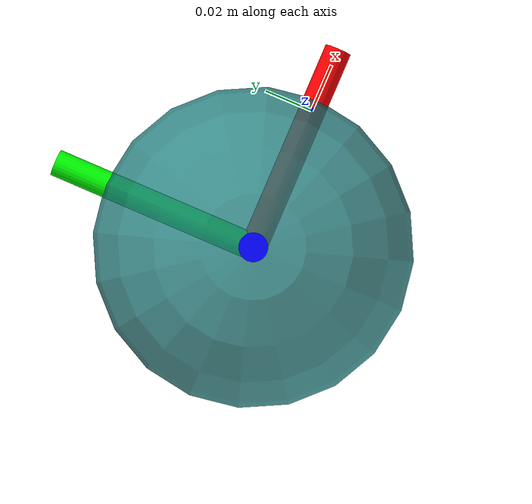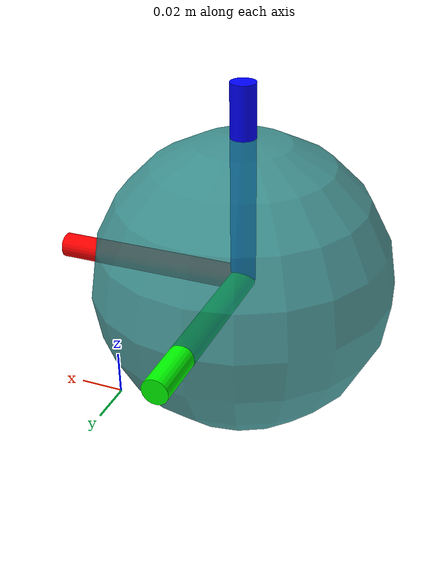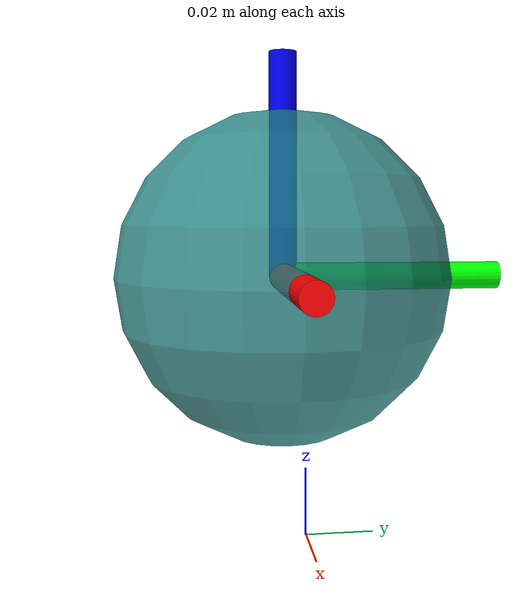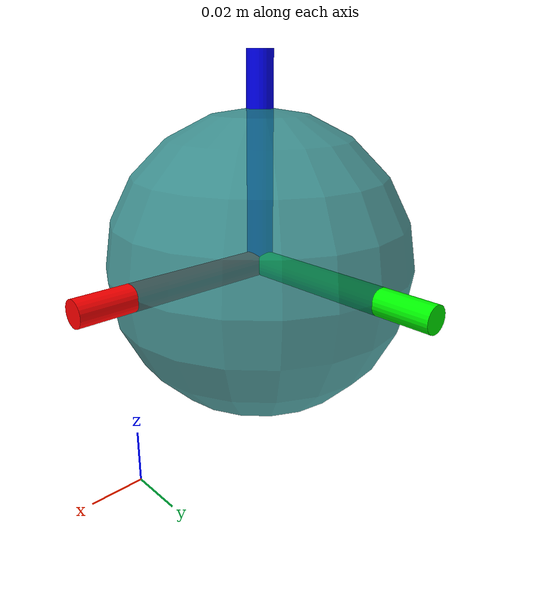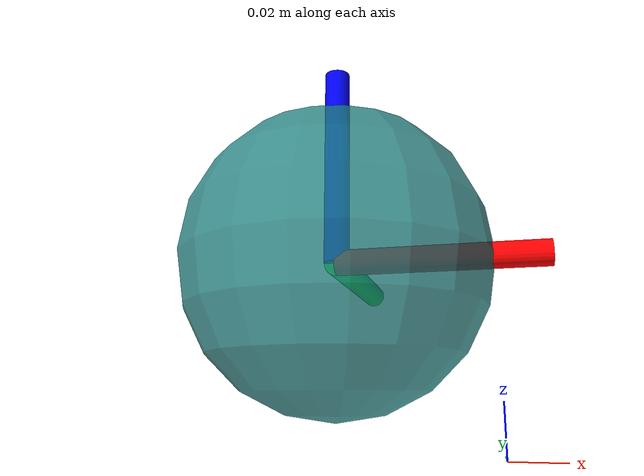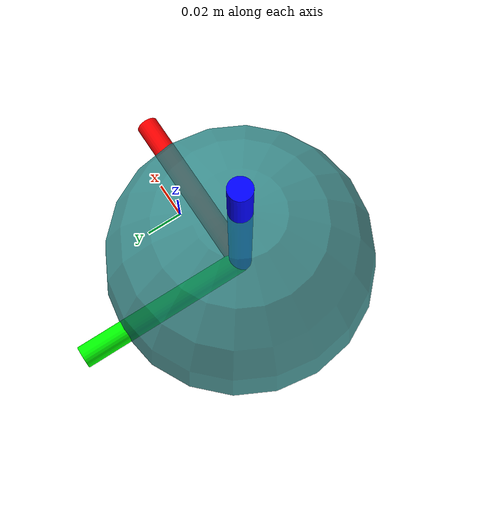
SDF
<?xml version="1.0"?>

<sdf version="1.7">
  <model name="sphere_r0.06m">

    <joint name="world_sphere_offset" type="fixed">
      <child>sphere_root</child>
      <parent>world</parent>
      <axis>
        <limit>
          <effort>0</effort>
        </limit>
      </axis>
    </joint>

    <link name="sphere_root">
      <pose relative_to="__model__">-0.06 0.0 0.072 0 0 0</pose>
    </link>

    <joint name="sphere_root_joint" type="ball">
        <child>sphere_link</child>
        <parent>sphere_root</parent>
        <axis>
          <limit>
            <effort>0</effort>
          </limit>
        </axis>
    </joint>

    <link name="sphere_link">
      <pose relative_to="sphere_root">0 0 0 0 0 0</pose>
      <inertial>
        <mass>1.0</mass>
        <inertia>
          <ixx>0.00001</ixx>
          <ixy>0</ixy>
          <ixz>0</ixz>
          <iyy>0.00001</iyy>
          <iyz>0</iyz>
          <izz>0.00001</izz>
        </inertia>
      </inertial>

      <visual name="visual">
        <geometry>
          <sphere>
            <radius>0.06</radius>
          </sphere>
        </geometry>
        <material>
          <diffuse>0.1 0.5 0.5 0.8</diffuse>
        </material>
      </visual>

      <visual name="x_axis">
        <pose> 0.0 0.0 0.04 0 0 0 </pose>
        <geometry>
          <cylinder>
           <radius>0.005</radius>
           <length>0.08</length>
          </cylinder>
        </geometry>
        <material>
          <diffuse>0.0 0.0 1.0 1.0</diffuse>
        </material>
      </visual>

      <visual name="y_axis">
        <pose> 0.0 0.04 0.0 1.5708 0.0 0.0 </pose>
        <geometry>
          <cylinder>
           <radius>0.005</radius>
           <length>0.08</length>
          </cylinder>
        </geometry>
        <material>
          <diffuse>0.0 1.0 0.0 1.0</diffuse>
        </material>
      </visual>

      <visual name="z_axis">
        <pose> 0.04 0.0 0.0 0.0 1.5708 0.0 </pose>
        <geometry>
          <cylinder>
           <radius>0.005</radius>
           <length>0.08</length>
          </cylinder>
        </geometry>
        <material>
          <diffuse>1.0 0.0 0.0 1.0</diffuse>
        </material>
      </visual>

      <collision name="collision">
        <geometry>
          <sphere>
            <radius>0.06</radius>
          </sphere>
        </geometry>
        <surface>
          <friction>
            <ode>
              <mu>1.0</mu>
              <mu2>1.0</mu2>
            </ode>
          </friction>
        </surface>
      </collision>
    </link>

  </model>
</sdf>
